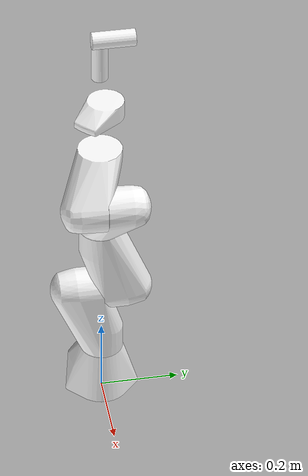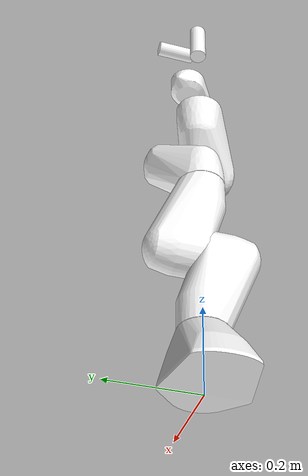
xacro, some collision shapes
<?xml version="1.0" encoding="utf-8"?>
<robot name="panda" xmlns:xacro="http://www.ros.org/wiki/xacro">

  <xacro:arg name="resources_prefix"      default="" />
  <xacro:arg name="resources_directory"   default="$(find mppi_panda)" />
  <xacro:arg name="collision_format"      default="stl"/>

  <xacro:property name="resources_prefix"     value="$(arg resources_prefix)" />
  <xacro:property name="resources_directory"  value="$(arg resources_directory)" />
  <xacro:property name="collision_format"     value="$(arg collision_format)" />

  <link name="world"/>
  <joint name="panda_joint_world" type="fixed">
    <parent link="world"/>
    <child link="panda_link0"/>
    <origin rpy="0 0 0" xyz="0 0 0"/>
  </joint>

  <link name="panda_link0">
    <inertial>
      <mass value="2.92"/>
      <origin rpy="0 0 0" xyz="-0.025566 -2.88e-05 0.057332"/>
      <inertia ixx="0.00782229414331" ixy="-1.56191622996e-05" ixz="-0.00126005738123" iyy="0.0109027971813" iyz="1.08233858202e-05" izz="0.0102355503949"/>
    </inertial>
    <visual>
      <origin rpy="0 0 0" xyz="0 0 0"/>
      <geometry>
        <mesh filename="${resources_prefix}${resources_directory}/resources/panda/meshes/visual/link0.dae"/>
      </geometry>
      <material name="">
        <color rgba="1 1 1 1"/>
      </material>
    </visual>
    <collision>
      <origin rpy="0 0 0" xyz="0 0 0"/>
      <geometry>
        <cylinder length="0.1" radius="0.02"/>
      </geometry>
    </collision>
  </link>
  <link name="panda_link1">
    <inertial>
      <mass value="2.74"/>
      <origin rpy="0 0 0" xyz="0 -0.0324958 -0.0675818"/>
      <inertia ixx="0.0180416958283" ixy="0.0" ixz="0.0" iyy="0.0159136071891" iyz="0.0046758424612" izz="0.00620690827127"/>
    </inertial>
    <visual>
      <origin rpy="0 0 0" xyz="0 0 0"/>
      <geometry>
        <mesh filename="${resources_prefix}${resources_directory}/resources/panda/meshes/visual/link1.dae"/>
      </geometry>
      <material name="">
        <color rgba="1 1 1 1"/>
      </material>
    </visual>
    <collision>
      <origin rpy="0 0 0" xyz="0 0 0"/>
      <geometry>
        <cylinder length="0.1" radius="0.02"/>
      </geometry>
    </collision>
  </link>
  <joint name="panda_joint1" type="revolute">
    <safety_controller k_position="100.0" k_velocity="40.0" soft_lower_limit="-2.8973" soft_upper_limit="2.8973"/>
    <origin rpy="0 0 0" xyz="0 0 0.333"/>
    <parent link="panda_link0"/>
    <child link="panda_link1"/>
    <axis xyz="0 0 1"/>
    <limit effort="87" lower="-2.8973" upper="2.8973" velocity="2.1750"/>
  </joint>
  <link name="panda_link2">
    <inertial>
      <mass value="2.74"/>
      <origin rpy="0 0 0" xyz="0 -0.06861 0.0322285"/>
      <inertia ixx="0.0182856182281" ixy="0.0" ixz="0.0" iyy="0.00621358421175" iyz="-0.00472844221905" izz="0.0161514346309"/>
    </inertial>
    <visual>
      <origin rpy="0 0 0" xyz="0 0 0"/>
      <geometry>
        <mesh filename="${resources_prefix}${resources_directory}/resources/panda/meshes/visual/link2.dae"/>
      </geometry>
      <material name="">
        <color rgba="1 1 1 1"/>
      </material>
    </visual>
    <collision>
      <origin rpy="0 0 0" xyz="0.2 0.2 0"/>
      <geometry>
        <cylinder length="0.1" radius="0.02"/>
      </geometry>
    </collision>
  </link>
  <joint name="panda_joint2" type="revolute">
    <safety_controller k_position="100.0" k_velocity="40.0" soft_lower_limit="-1.7628" soft_upper_limit="1.7628"/>
    <origin rpy="-1.57079632679 0 0" xyz="0 0 0"/>
    <parent link="panda_link1"/>
    <child link="panda_link2"/>
    <axis xyz="0 0 1"/>
    <limit effort="87" lower="-1.7628" upper="1.7628" velocity="2.1750"/>
  </joint>
  <link name="panda_link3">
    <inertial>
      <mass value="2.38"/>
      <origin rpy="0 0 0" xyz="0.0469893 0.0316374 -0.031704"/>
      <inertia ixx="0.00771376630908" ixy="-0.00248490625138" ixz="-0.00332147581033" iyy="0.00989108008727" iyz="-0.00217796151484" izz="0.00811723558464"/>
    </inertial>
    <visual>
      <origin rpy="0 0 0" xyz="0 0 0"/>
      <geometry>
        <mesh filename="${resources_prefix}${resources_directory}/resources/panda/meshes/visual/link3.dae"/>
      </geometry>
      <material name="">
        <color rgba="1 1 1 1"/>
      </material>
    </visual>
    <collision>
      <origin rpy="0 0 0" xyz="0 0 0"/>
      <geometry>
        <cylinder length="0.1" radius="0.02"/>
      </geometry>
    </collision>
  </link>
  <joint name="panda_joint3" type="revolute">
    <safety_controller k_position="100.0" k_velocity="40.0" soft_lower_limit="-2.8973" soft_upper_limit="2.8973"/>
    <origin rpy="1.57079632679 0 0" xyz="0 -0.316 0"/>
    <parent link="panda_link2"/>
    <child link="panda_link3"/>
    <axis xyz="0 0 1"/>
    <limit effort="87" lower="-2.8973" upper="2.8973" velocity="2.1750"/>
  </joint>
  <link name="panda_link4">
    <inertial>
      <mass value="2.38"/>
      <origin rpy="0 0 0" xyz="-0.0360446 0.0336853 0.031882"/>
      <inertia ixx="0.00799663881132" ixy="0.00347095570217" ixz="-0.00241222942995" iyy="0.00825390705278" iyz="0.00235774044121" izz="0.0102515004345"/>
    </inertial>
    <visual>
      <origin rpy="0 0 0" xyz="0 0 0"/>
      <geometry>
        <mesh filename="${resources_prefix}${resources_directory}/resources/panda/meshes/visual/link4.dae"/>
      </geometry>
      <material name="">
        <color rgba="1 1 1 1"/>
      </material>
    </visual>
    <collision>
      <origin rpy="0 0 0" xyz="0 0 0"/>
      <geometry>
        <cylinder length="0.1" radius="0.02"/>
      </geometry>
    </collision>
  </link>
  <joint name="panda_joint4" type="revolute">
    <safety_controller k_position="100.0" k_velocity="40.0" soft_lower_limit="-3.0718" soft_upper_limit="0.0698"/>
    <!-- soft_upper_limitr should be -0.0698, but that brakes simulation when initial position for this joint is 0.0 -->
    <origin rpy="1.57079632679 0 0" xyz="0.0825 0 0"/>
    <parent link="panda_link3"/>
    <child link="panda_link4"/>
    <axis xyz="0 0 1"/>
    <limit effort="87" lower="-3.0718" upper="0.0698" velocity="2.1750"/>
    <!-- upper should be -0.0698, but that brakes simulation when initial position for this joint is 0.0 -->
  </joint>
  <link name="panda_link5">
    <inertial>
      <mass value="2.74"/>
      <origin rpy="0 0 0" xyz="0 0.0610427 -0.104176"/>
      <inertia ixx="0.030371374513" ixy="6.50283587108e-07" ixz="-1.05129179916e-05" iyy="0.0288752887402" iyz="-0.00775653445787" izz="0.00444134056164"/>
    </inertial>
    <visual>
      <origin rpy="0 0 0" xyz="0 0 0"/>
      <geometry>
        <mesh filename="${resources_prefix}${resources_directory}/resources/panda/meshes/visual/link5.dae"/>
      </geometry>
      <material name="">
        <color rgba="1 1 1 1"/>
      </material>
    </visual>
    <collision>
      <origin rpy="0 0 0" xyz="0 0 0"/>
      <geometry>
        <cylinder length="0.1" radius="0.02"/>
      </geometry>
    </collision>
  </link>
  <joint name="panda_joint5" type="revolute">
    <safety_controller k_position="100.0" k_velocity="40.0" soft_lower_limit="-2.8973" soft_upper_limit="2.8973"/>
    <origin rpy="-1.57079632679 0 0" xyz="-0.0825 0.384 0"/>
    <parent link="panda_link4"/>
    <child link="panda_link5"/>
    <axis xyz="0 0 1"/>
    <limit effort="12" lower="-2.8973" upper="2.8973" velocity="2.6100"/>
  </joint>
  <link name="panda_link6">
    <inertial>
      <mass value="1.55"/>
      <origin rpy="0 0 0" xyz="0.0510509 0.009108 0.0106343"/>
      <inertia ixx="0.00303336450376" ixy="-0.000437276865508" ixz="0.000629257294877" iyy="0.00404479911567" iyz="0.000130472021025" izz="0.00558234286039"/>
    </inertial>
    <visual>
      <origin rpy="0 0 0" xyz="0 0 0"/>
      <geometry>
        <mesh filename="${resources_prefix}${resources_directory}/resources/panda/meshes/visual/link6.dae"/>
      </geometry>
      <material name="">
        <color rgba="1 1 1 1"/>
      </material>
    </visual>
    <collision>
      <origin rpy="0 0 0" xyz="0.2 0.2 0"/>
      <geometry>
        <cylinder length="0.1" radius="0.02"/>
      </geometry>
    </collision>
  </link>
  <joint name="panda_joint6" type="revolute">
    <safety_controller k_position="100.0" k_velocity="40.0" soft_lower_limit="-0.0175" soft_upper_limit="3.7525"/>
    <origin rpy="1.57079632679 0 0" xyz="0 0 0"/>
    <parent link="panda_link5"/>
    <child link="panda_link6"/>
    <axis xyz="0 0 1"/>
    <limit effort="12" lower="-0.0175" upper="3.7525" velocity="2.6100"/>
  </joint>
  <link name="panda_link7">
    <inertial>
      <mass value="0.54"/>
      <origin rpy="0 0 0" xyz="0.0109695 0.0107965 0.0650411"/>
      <inertia ixx="0.000888868887021" ixy="-0.00012239074652" ixz="3.98699829666e-05" iyy="0.000888001373233" iyz="-9.33825115206e-05" izz="0.0007176834609"/>
    </inertial>
    <visual>
      <origin rpy="0 0 0" xyz="0 0 0"/>
      <geometry>
        <mesh filename="${resources_prefix}${resources_directory}/resources/panda/meshes/visual/link7.dae"/>
      </geometry>
      <material name="">
        <color rgba="1 1 1 1"/>
      </material>
    </visual>
    <collision>
      <origin rpy="0 0 0" xyz="0 0 0"/>
      <geometry>
        <cylinder length="0.1" radius="0.02"/>
      </geometry>
    </collision>
  </link>
  <joint name="panda_joint7" type="revolute">
    <safety_controller k_position="100.0" k_velocity="40.0" soft_lower_limit="-2.8973" soft_upper_limit="2.8973"/>
    <origin rpy="1.57079632679 0 0" xyz="0.088 0 0"/>
    <parent link="panda_link6"/>
    <child link="panda_link7"/>
    <axis xyz="0 0 1"/>
    <limit effort="12" lower="-2.8973" upper="2.8973" velocity="2.6100"/>
  </joint>
  <link name="panda_link8">
    <inertial>
      <mass value="0.0"/>
      <origin rpy="0 0 0" xyz="0.0 0.0 0.0"/>
      <inertia ixx="0.0" ixy="0.0" ixz="0" iyy="0.0" iyz="0.0" izz="0.0"/>
    </inertial>
  </link>
  <joint name="panda_joint8" type="fixed">
    <origin rpy="0 0 0" xyz="0 0 0.107"/>
    <parent link="panda_link7"/>
    <child link="panda_link8"/>
    <axis xyz="0 0 0"/>
  </joint>
</robot>
